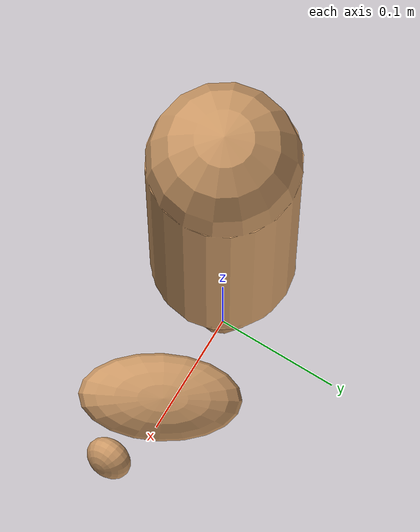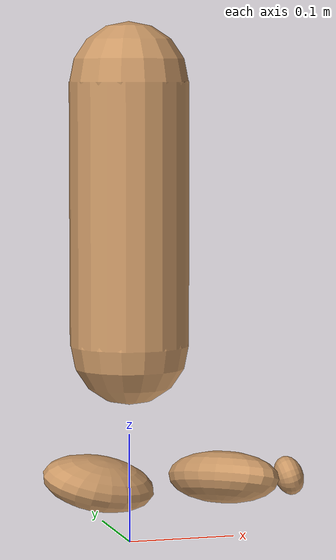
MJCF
<mujoco model="ellipsoid_foot_detailed">
  <compiler coordinate="local"/>
  <default>
    <joint damping="0.0" armature="0.01" stiffness="0.0" limited="true"/>
    <geom conaffinity="1" condim="3" contype="7" margin="0.001" rgba="0.8 0.6 .4 1"/>
  </default>
  <asset>
    <texture type="skybox" builtin="gradient" rgb1=".4 .5 .6" rgb2="0 0 0" width="100" height="100"/>
    <texture builtin="flat" height="1278" mark="cross" markrgb="1 1 1" name="texgeom" random="0.01" rgb1="0.8 0.6 0.4" rgb2="0.8 0.6 0.4" type="cube" width="127"/>
    <texture builtin="checker" height="100" name="texplane" rgb1="0 0 0" rgb2="0.8 0.8 0.8" type="2d" width="100"/>
    <material name="MatPlane" reflectance="0.5" shininess="1" specular="1" texrepeat="60 60" texture="texplane"/>
    <material name="geom" texture="texgeom" texuniform="true"/>
  </asset>

  <worldbody>
    <light pos="0 0 1.5" dir="0 0 -1" diffuse="0.8 0.8 0.8" specular="0.3 0.3 0.3"/>

    <!-- Shank (L_Knee) -->
    <body name="L_Knee" pos="0 0 0.5">
      <joint name="root_z" type="slide" axis="0 0 1" damping="10" stiffness="0"/>
      <!-- Shank geometry -->
      <geom type="capsule" contype="1" conaffinity="1" density="1234.567901" fromto="0.0000 0.0000 -0.0797 0.0000 0.0000 -0.3185" size="0.0541"/>

      <!-- Ankle (L_Ankle) -->
      <body name="L_Ankle" pos="0.0000 0.0000 -0.3982">
        <joint name="L_Ankle_x" type="hinge" pos="0 0 0" axis="1 0 0" stiffness="150" damping="15" armature="0.02" range="-10.0000 10.0000"/>
        <joint name="L_Ankle_y" type="hinge" pos="0 0 0" axis="0 1 0" stiffness="150" damping="15" armature="0.02" range="-45.0000 20.0000"/>
        <joint name="L_Ankle_z" type="hinge" pos="0 0 0" axis="0 0 1" stiffness="150" damping="15" armature="0.02" range="-10.0000 10.0000"/>

        <!-- Heel ellipsoid: a=35.4, b=54.0, c=22.6 mm, Euler (0.329, 0.201, 0.101) rad -->
        <geom type="ellipsoid" pos="-0.0301 -0.0037 -0.0450" size="0.0540 0.0354 0.0226" quat="0.9795 0.1640 0.0996 0.0505" density="1000"/>

        <!-- Ball ellipsoid: a=63.2, b=33.8, c=24.0 mm, Euler (-0.235, 0.191, 0.528) rad -->
        <!-- In MuJoCo: size=(x=anterior, y=lateral, z=vertical), so 63.2mm goes to y-axis for medial-lateral elongation -->
        <geom type="ellipsoid" pos="0.0890 -0.0020 -0.0456" size="0.0338 0.0632 0.0240" quat="0.9572 -0.0878 0.1218 0.2470" density="1000"/>

        <!-- Toe (L_Toe) -->
        <body name="L_Toe" pos="0.1400 0.0000 -0.0550">
          <joint name="L_Toe_x" type="hinge" pos="0 0 0" axis="1 0 0" stiffness="75" damping="8" armature="0.02" range="-10.0000 10.0000"/>
          <joint name="L_Toe_y" type="hinge" pos="0 0 0" axis="0 1 0" stiffness="75" damping="8" armature="0.02" range="-20.0000 20.0000"/>
          <joint name="L_Toe_z" type="hinge" pos="0 0 0" axis="0 0 1" stiffness="75" damping="8" armature="0.02" range="-5.0000 5.0000"/>

          <!-- Toe ellipsoid: a=18.2, b=18.6, c=13.2 mm, Euler (0.339, 1.23, 0.454) rad -->
          <!-- Position adjusted so toe contacts ground at same level as heel/ball -->
          <geom type="ellipsoid" pos="0.0102 -0.0108 0.0094" size="0.0182 0.0186 0.0132" quat="0.7600 0.2624 0.5268 0.2759" density="1000"/>
        </body>
      </body>
    </body>
  </worldbody>

  <actuator>
    <motor name="L_Ankle_x" joint="L_Ankle_x" gear="500"/>
    <motor name="L_Ankle_y" joint="L_Ankle_y" gear="500"/>
    <motor name="L_Ankle_z" joint="L_Ankle_z" gear="500"/>
    <motor name="L_Toe_x" joint="L_Toe_x" gear="500"/>
    <motor name="L_Toe_y" joint="L_Toe_y" gear="500"/>
    <motor name="L_Toe_z" joint="L_Toe_z" gear="500"/>
  </actuator>
</mujoco>
